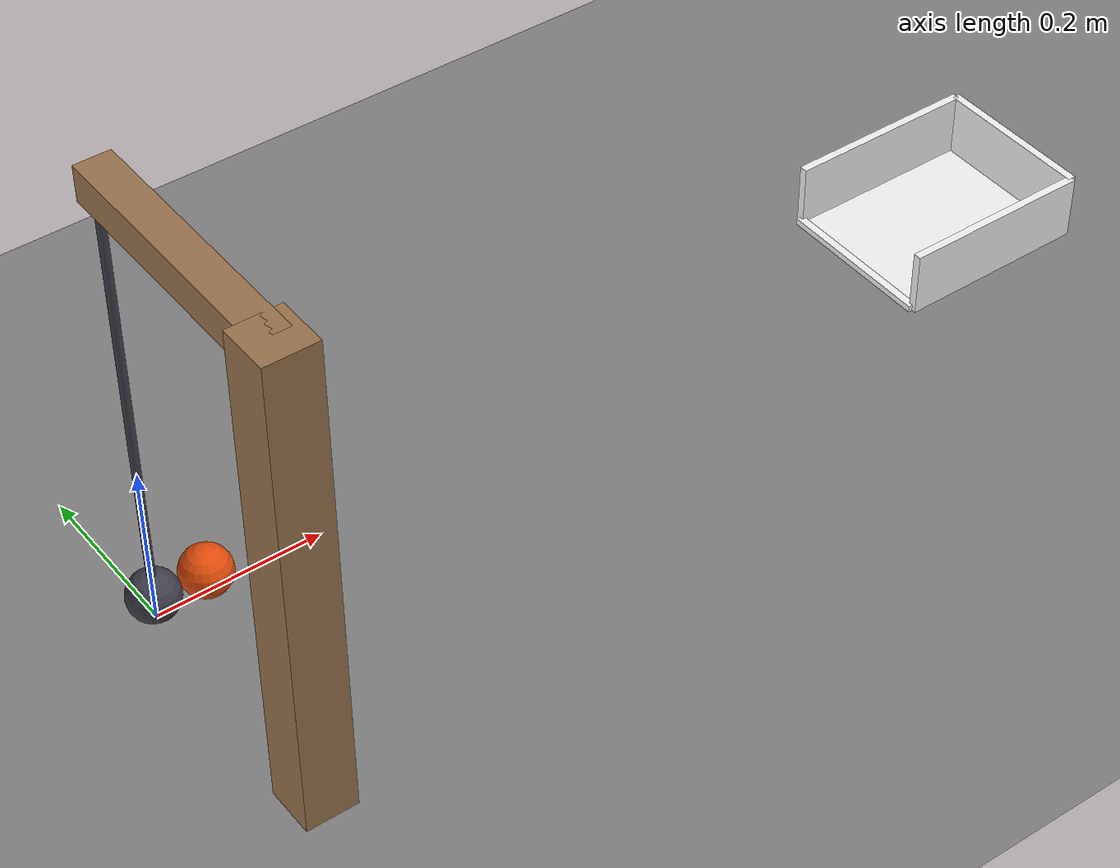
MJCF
<mujoco model="pendulum_strikes_ball_into_cup">
  <compiler angle="radian"/>
  <option timestep="0.002"/>
  <worldbody>
    <geom name="floor" type="plane" size="6 6 0.1" friction="0.8 0.002 0.0005"/>
    <body name="pendulum" pos="0 0 0.532">
      <joint name="pendulum_hinge" type="hinge" pos="0 0 0" axis="0 1 0"/>
      <geom name="pendulum" type="sphere" pos="0 0 -0.5" size="0.03" mass="0.3" rgba="0.25 0.25 0.3 1"/>
      <geom name="pendulum rod" type="capsule" size="0.005" fromto="0 0 0 0 0 -0.47" mass="0.02" rgba="0.25 0.25 0.3 1"/>
    </body>
    <body name="stand arm">
      <geom name="stand arm" type="box" pos="0 -0.15 0.572" size="0.02 0.15 0.02" contype="0" conaffinity="0" rgba="0.6 0.45 0.3 1"/>
    </body>
    <body name="stand post">
      <geom name="stand post" type="box" pos="0 -0.3 0.296" size="0.03 0.03 0.296" contype="0" conaffinity="0" rgba="0.6 0.45 0.3 1"/>
    </body>
    <body name="ball" pos="0.062 0 0.03">
      <freejoint/>
      <geom name="ball" type="sphere" pos="0 0 0" size="0.03" mass="0.05" condim="6" friction="0.8 0.002 0.0005" rgba="0.9 0.3 0.05 1"/>
    </body>
    <body name="cup">
      <geom name="cup_base" type="box" pos="1.062 0 0.0015" size="0.12 0.1 0.0015" friction="0.8 0.01 0.01" solref="0.01 1" rgba="0.95 0.95 0.95 1"/>
      <geom name="cup_near_wall" type="box" pos="0.942 0 0.004" size="0.005 0.1 0.004" friction="0.8 0.01 0.01" solref="0.01 1" rgba="0.95 0.95 0.95 1"/>
      <geom name="cup_far_wall" type="box" pos="1.182 0 0.04" size="0.005 0.1 0.04" friction="0.8 0.01 0.01" solref="0.01 1" rgba="0.95 0.95 0.95 1"/>
      <geom name="cup_left_wall" type="box" pos="1.062 0.1 0.04" size="0.12 0.005 0.04" friction="0.8 0.01 0.01" solref="0.01 1" rgba="0.95 0.95 0.95 1"/>
      <geom name="cup_right_wall" type="box" pos="1.062 -0.1 0.04" size="0.12 0.005 0.04" friction="0.8 0.01 0.01" solref="0.01 1" rgba="0.95 0.95 0.95 1"/>
    </body>
  </worldbody>
  <keyframe>
    <key name="start" qpos="0.698132 0.062 0 0.03 1 0 0 0" qvel="0 0 0 0 0 0 0"/>
  </keyframe>
</mujoco>
